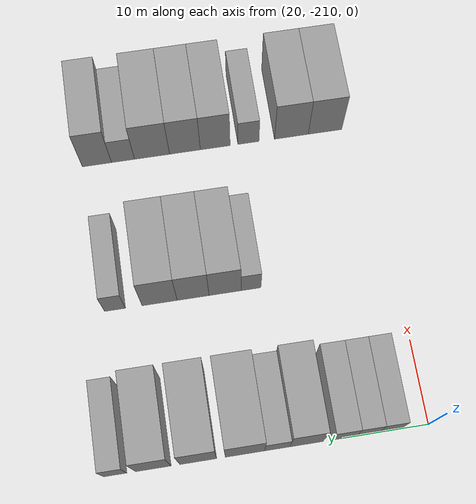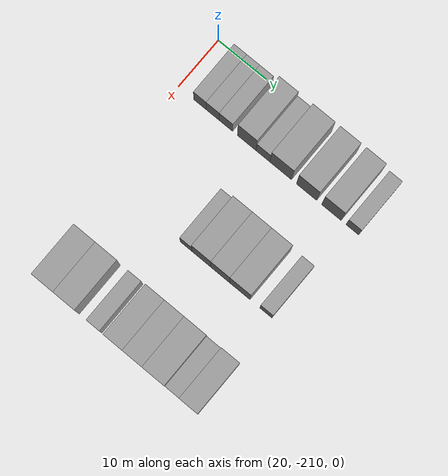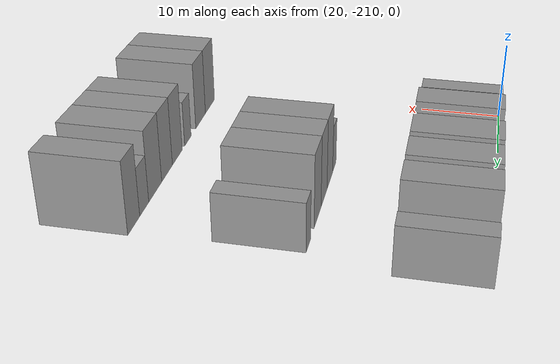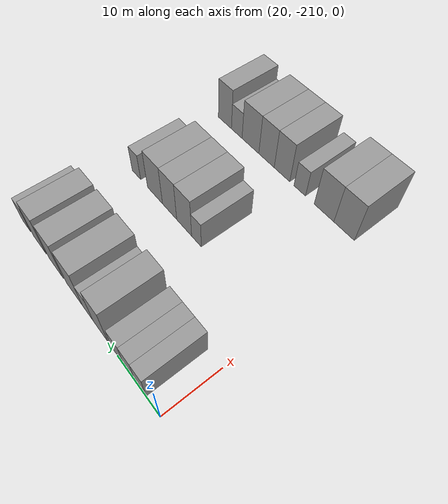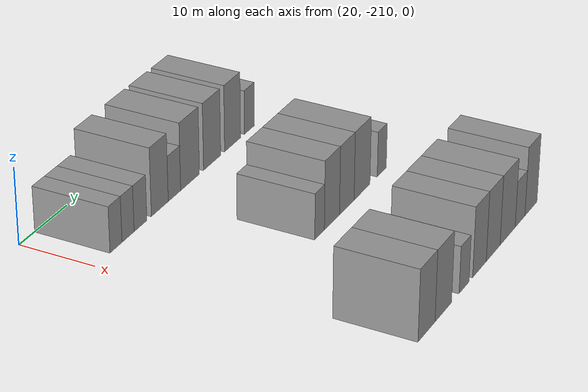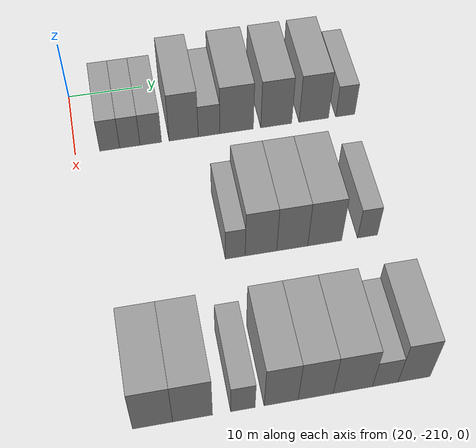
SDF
<sdf version="1.6">
 <world name="default">
  <model name="building_8">
   <static>1</static>
   <pose>25.0000 -205.5048 0 0.000000 0.000000 0.000000</pose>
   <link name="link">
    <pose>0 0 3.00 0 0 0</pose>
    <collision name="collision"><geometry><box><size>10.0000 2.6002 6.0000</size></box></geometry></collision>
    <visual name="visual">
     <cast_shadows>0</cast_shadows>
     <geometry><box><size>10.0000 2.6002 6.0000</size></box></geometry>
     <material>
      <script>
       <uri>model://grey_wall/materials/scripts</uri>
       <uri>model://grey_wall/materials/textures</uri>
       <name>vrc/grey_wall</name>
      </script>
     </material>
    </visual>
   </link>
  </model>
  <model name="building_9">
   <static>1</static>
   <pose>25.0000 -202.8734 0 0.000000 0.000000 0.000000</pose>
   <link name="link">
    <pose>0 0 3.00 0 0 0</pose>
    <collision name="collision"><geometry><box><size>10.0000 2.6625 6.0000</size></box></geometry></collision>
    <visual name="visual">
     <cast_shadows>0</cast_shadows>
     <geometry><box><size>10.0000 2.6625 6.0000</size></box></geometry>
     <material>
      <script>
       <uri>model://grey_wall/materials/scripts</uri>
       <uri>model://grey_wall/materials/textures</uri>
       <name>vrc/grey_wall</name>
      </script>
     </material>
    </visual>
   </link>
  </model>
  <model name="building_10">
   <static>1</static>
   <pose>25.0000 -200.1235 0 0.000000 0.000000 0.000000</pose>
   <link name="link">
    <pose>0 0 3.00 0 0 0</pose>
    <collision name="collision"><geometry><box><size>10.0000 2.8374 6.0000</size></box></geometry></collision>
    <visual name="visual">
     <cast_shadows>0</cast_shadows>
     <geometry><box><size>10.0000 2.8374 6.0000</size></box></geometry>
     <material>
      <script>
       <uri>model://grey_wall/materials/scripts</uri>
       <uri>model://grey_wall/materials/textures</uri>
       <name>vrc/grey_wall</name>
      </script>
     </material>
    </visual>
   </link>
  </model>
  <model name="building_11">
   <static>1</static>
   <pose>25.0000 -195.7681 0 0.000000 0.000000 0.000000</pose>
   <link name="link">
    <pose>0 0 4.50 0 0 0</pose>
    <collision name="collision"><geometry><box><size>10.0000 3.8734 9.0000</size></box></geometry></collision>
    <visual name="visual">
     <cast_shadows>0</cast_shadows>
     <geometry><box><size>10.0000 3.8734 9.0000</size></box></geometry>
     <material>
      <script>
       <uri>model://grey_wall/materials/scripts</uri>
       <uri>model://grey_wall/materials/textures</uri>
       <name>vrc/grey_wall</name>
      </script>
     </material>
    </visual>
   </link>
  </model>
  <model name="building_12">
   <static>1</static>
   <pose>25.0000 -192.3877 0 0.000000 0.000000 0.000000</pose>
   <link name="link">
    <pose>0 0 3.00 0 0 0</pose>
    <collision name="collision"><geometry><box><size>10.0000 2.8874 6.0000</size></box></geometry></collision>
    <visual name="visual">
     <cast_shadows>0</cast_shadows>
     <geometry><box><size>10.0000 2.8874 6.0000</size></box></geometry>
     <material>
      <script>
       <uri>model://grey_wall/materials/scripts</uri>
       <uri>model://grey_wall/materials/textures</uri>
       <name>vrc/grey_wall</name>
      </script>
     </material>
    </visual>
   </link>
  </model>
  <model name="building_13">
   <static>1</static>
   <pose>25.0000 -188.7021 0 0.000000 0.000000 0.000000</pose>
   <link name="link">
    <pose>0 0 4.50 0 0 0</pose>
    <collision name="collision"><geometry><box><size>10.0000 4.4838 9.0000</size></box></geometry></collision>
    <visual name="visual">
     <cast_shadows>0</cast_shadows>
     <geometry><box><size>10.0000 4.4838 9.0000</size></box></geometry>
     <material>
      <script>
       <uri>model://grey_wall/materials/scripts</uri>
       <uri>model://grey_wall/materials/textures</uri>
       <name>vrc/grey_wall</name>
      </script>
     </material>
    </visual>
   </link>
  </model>
  <model name="building_14">
   <static>1</static>
   <pose>25.0000 -183.3617 0 0.000000 0.000000 0.000000</pose>
   <link name="link">
    <pose>0 0 4.50 0 0 0</pose>
    <collision name="collision"><geometry><box><size>10.0000 4.1970 9.0000</size></box></geometry></collision>
    <visual name="visual">
     <cast_shadows>0</cast_shadows>
     <geometry><box><size>10.0000 4.1970 9.0000</size></box></geometry>
     <material>
      <script>
       <uri>model://grey_wall/materials/scripts</uri>
       <uri>model://grey_wall/materials/textures</uri>
       <name>vrc/grey_wall</name>
      </script>
     </material>
    </visual>
   </link>
  </model>
  <model name="building_15">
   <static>1</static>
   <pose>25.0000 -178.2500 0 0.000000 0.000000 0.000000</pose>
   <link name="link">
    <pose>0 0 4.50 0 0 0</pose>
    <collision name="collision"><geometry><box><size>10.0000 4.0265 9.0000</size></box></geometry></collision>
    <visual name="visual">
     <cast_shadows>0</cast_shadows>
     <geometry><box><size>10.0000 4.0265 9.0000</size></box></geometry>
     <material>
      <script>
       <uri>model://grey_wall/materials/scripts</uri>
       <uri>model://grey_wall/materials/textures</uri>
       <name>vrc/grey_wall</name>
      </script>
     </material>
    </visual>
   </link>
  </model>
  <model name="building_16">
   <static>1</static>
   <pose>25.0000 -173.9341 0 0.000000 0.000000 0.000000</pose>
   <link name="link">
    <pose>0 0 3.00 0 0 0</pose>
    <collision name="collision"><geometry><box><size>10.0000 2.6052 6.0000</size></box></geometry></collision>
    <visual name="visual">
     <cast_shadows>0</cast_shadows>
     <geometry><box><size>10.0000 2.6052 6.0000</size></box></geometry>
     <material>
      <script>
       <uri>model://grey_wall/materials/scripts</uri>
       <uri>model://grey_wall/materials/textures</uri>
       <name>vrc/grey_wall</name>
      </script>
     </material>
    </visual>
   </link>
  </model>
  <model name="building_123">
   <static>1</static>
   <pose>44.0000 -192.4427 0 0.000000 0.000000 0.000000</pose>
   <link name="link">
    <pose>0 0 3.00 0 0 0</pose>
    <collision name="collision"><geometry><box><size>10.0000 2.4214 6.0000</size></box></geometry></collision>
    <visual name="visual">
     <cast_shadows>0</cast_shadows>
     <geometry><box><size>10.0000 2.4214 6.0000</size></box></geometry>
     <material>
      <script>
       <uri>model://grey_wall/materials/scripts</uri>
       <uri>model://grey_wall/materials/textures</uri>
       <name>vrc/grey_wall</name>
      </script>
     </material>
    </visual>
   </link>
  </model>
  <model name="building_124">
   <static>1</static>
   <pose>44.0000 -189.2948 0 0.000000 0.000000 0.000000</pose>
   <link name="link">
    <pose>0 0 4.50 0 0 0</pose>
    <collision name="collision"><geometry><box><size>10.0000 3.8745 9.0000</size></box></geometry></collision>
    <visual name="visual">
     <cast_shadows>0</cast_shadows>
     <geometry><box><size>10.0000 3.8745 9.0000</size></box></geometry>
     <material>
      <script>
       <uri>model://grey_wall/materials/scripts</uri>
       <uri>model://grey_wall/materials/textures</uri>
       <name>vrc/grey_wall</name>
      </script>
     </material>
    </visual>
   </link>
  </model>
  <model name="building_125">
   <static>1</static>
   <pose>44.0000 -185.4379 0 0.000000 0.000000 0.000000</pose>
   <link name="link">
    <pose>0 0 4.50 0 0 0</pose>
    <collision name="collision"><geometry><box><size>10.0000 3.8393 9.0000</size></box></geometry></collision>
    <visual name="visual">
     <cast_shadows>0</cast_shadows>
     <geometry><box><size>10.0000 3.8393 9.0000</size></box></geometry>
     <material>
      <script>
       <uri>model://grey_wall/materials/scripts</uri>
       <uri>model://grey_wall/materials/textures</uri>
       <name>vrc/grey_wall</name>
      </script>
     </material>
    </visual>
   </link>
  </model>
  <model name="building_126">
   <static>1</static>
   <pose>44.0000 -181.4023 0 0.000000 0.000000 0.000000</pose>
   <link name="link">
    <pose>0 0 4.50 0 0 0</pose>
    <collision name="collision"><geometry><box><size>10.0000 4.2319 9.0000</size></box></geometry></collision>
    <visual name="visual">
     <cast_shadows>0</cast_shadows>
     <geometry><box><size>10.0000 4.2319 9.0000</size></box></geometry>
     <material>
      <script>
       <uri>model://grey_wall/materials/scripts</uri>
       <uri>model://grey_wall/materials/textures</uri>
       <name>vrc/grey_wall</name>
      </script>
     </material>
    </visual>
   </link>
  </model>
  <model name="building_127">
   <static>1</static>
   <pose>44.0000 -176.0356 0 0.000000 0.000000 0.000000</pose>
   <link name="link">
    <pose>0 0 3.00 0 0 0</pose>
    <collision name="collision"><geometry><box><size>10.0000 2.5014 6.0000</size></box></geometry></collision>
    <visual name="visual">
     <cast_shadows>0</cast_shadows>
     <geometry><box><size>10.0000 2.5014 6.0000</size></box></geometry>
     <material>
      <script>
       <uri>model://grey_wall/materials/scripts</uri>
       <uri>model://grey_wall/materials/textures</uri>
       <name>vrc/grey_wall</name>
      </script>
     </material>
    </visual>
   </link>
  </model>
  <model name="building_241">
   <static>1</static>
   <pose>63.0000 -205.0414 0 0.000000 0.000000 0.000000</pose>
   <link name="link">
    <pose>0 0 4.50 0 0 0</pose>
    <collision name="collision"><geometry><box><size>10.0000 4.3388 9.0000</size></box></geometry></collision>
    <visual name="visual">
     <cast_shadows>0</cast_shadows>
     <geometry><box><size>10.0000 4.3388 9.0000</size></box></geometry>
     <material>
      <script>
       <uri>model://grey_wall/materials/scripts</uri>
       <uri>model://grey_wall/materials/textures</uri>
       <name>vrc/grey_wall</name>
      </script>
     </material>
    </visual>
   </link>
  </model>
  <model name="building_242">
   <static>1</static>
   <pose>63.0000 -200.6962 0 0.000000 0.000000 0.000000</pose>
   <link name="link">
    <pose>0 0 4.50 0 0 0</pose>
    <collision name="collision"><geometry><box><size>10.0000 4.3516 9.0000</size></box></geometry></collision>
    <visual name="visual">
     <cast_shadows>0</cast_shadows>
     <geometry><box><size>10.0000 4.3516 9.0000</size></box></geometry>
     <material>
      <script>
       <uri>model://grey_wall/materials/scripts</uri>
       <uri>model://grey_wall/materials/textures</uri>
       <name>vrc/grey_wall</name>
      </script>
     </material>
    </visual>
   </link>
  </model>
  <model name="building_243">
   <static>1</static>
   <pose>63.0000 -195.1716 0 0.000000 0.000000 0.000000</pose>
   <link name="link">
    <pose>0 0 3.00 0 0 0</pose>
    <collision name="collision"><geometry><box><size>10.0000 2.6978 6.0000</size></box></geometry></collision>
    <visual name="visual">
     <cast_shadows>0</cast_shadows>
     <geometry><box><size>10.0000 2.6978 6.0000</size></box></geometry>
     <material>
      <script>
       <uri>model://grey_wall/materials/scripts</uri>
       <uri>model://grey_wall/materials/textures</uri>
       <name>vrc/grey_wall</name>
      </script>
     </material>
    </visual>
   </link>
  </model>
  <model name="building_244">
   <static>1</static>
   <pose>63.0000 -190.9196 0 0.000000 0.000000 0.000000</pose>
   <link name="link">
    <pose>0 0 4.50 0 0 0</pose>
    <collision name="collision"><geometry><box><size>10.0000 3.8062 9.0000</size></box></geometry></collision>
    <visual name="visual">
     <cast_shadows>0</cast_shadows>
     <geometry><box><size>10.0000 3.8062 9.0000</size></box></geometry>
     <material>
      <script>
       <uri>model://grey_wall/materials/scripts</uri>
       <uri>model://grey_wall/materials/textures</uri>
       <name>vrc/grey_wall</name>
      </script>
     </material>
    </visual>
   </link>
  </model>
  <model name="building_245">
   <static>1</static>
   <pose>63.0000 -187.0552 0 0.000000 0.000000 0.000000</pose>
   <link name="link">
    <pose>0 0 4.50 0 0 0</pose>
    <collision name="collision"><geometry><box><size>10.0000 3.9227 9.0000</size></box></geometry></collision>
    <visual name="visual">
     <cast_shadows>0</cast_shadows>
     <geometry><box><size>10.0000 3.9227 9.0000</size></box></geometry>
     <material>
      <script>
       <uri>model://grey_wall/materials/scripts</uri>
       <uri>model://grey_wall/materials/textures</uri>
       <name>vrc/grey_wall</name>
      </script>
     </material>
    </visual>
   </link>
  </model>
  <model name="building_246">
   <static>1</static>
   <pose>63.0000 -182.8678 0 0.000000 0.000000 0.000000</pose>
   <link name="link">
    <pose>0 0 4.50 0 0 0</pose>
    <collision name="collision"><geometry><box><size>10.0000 4.4520 9.0000</size></box></geometry></collision>
    <visual name="visual">
     <cast_shadows>0</cast_shadows>
     <geometry><box><size>10.0000 4.4520 9.0000</size></box></geometry>
     <material>
      <script>
       <uri>model://grey_wall/materials/scripts</uri>
       <uri>model://grey_wall/materials/textures</uri>
       <name>vrc/grey_wall</name>
      </script>
     </material>
    </visual>
   </link>
  </model>
  <model name="building_247">
   <static>1</static>
   <pose>63.0000 -179.1847 0 0.000000 0.000000 0.000000</pose>
   <link name="link">
    <pose>0 0 3.00 0 0 0</pose>
    <collision name="collision"><geometry><box><size>10.0000 2.9143 6.0000</size></box></geometry></collision>
    <visual name="visual">
     <cast_shadows>0</cast_shadows>
     <geometry><box><size>10.0000 2.9143 6.0000</size></box></geometry>
     <material>
      <script>
       <uri>model://grey_wall/materials/scripts</uri>
       <uri>model://grey_wall/materials/textures</uri>
       <name>vrc/grey_wall</name>
      </script>
     </material>
    </visual>
   </link>
  </model>
  <model name="building_248">
   <static>1</static>
   <pose>63.0000 -175.8839 0 0.000000 0.000000 0.000000</pose>
   <link name="link">
    <pose>0 0 4.50 0 0 0</pose>
    <collision name="collision"><geometry><box><size>10.0000 3.6872 9.0000</size></box></geometry></collision>
    <visual name="visual">
     <cast_shadows>0</cast_shadows>
     <geometry><box><size>10.0000 3.6872 9.0000</size></box></geometry>
     <material>
      <script>
       <uri>model://grey_wall/materials/scripts</uri>
       <uri>model://grey_wall/materials/textures</uri>
       <name>vrc/grey_wall</name>
      </script>
     </material>
    </visual>
   </link>
  </model>
 </world>
</sdf>
